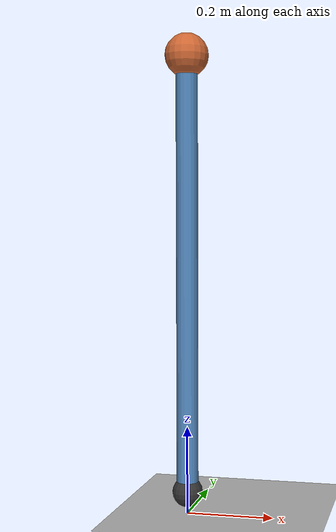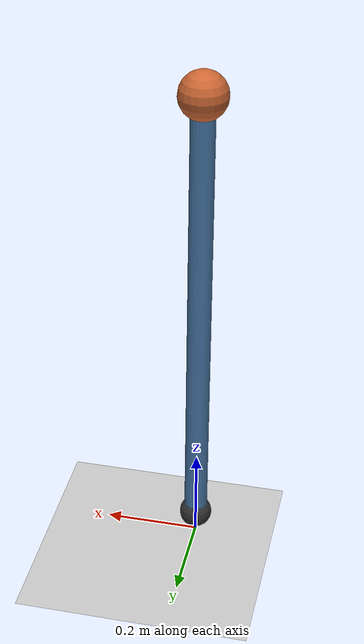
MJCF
<mujoco model="straight_leg_biped">

  <compiler angle="radian" coordinate="local"/>

  <option timestep="0.002" gravity="0 0 -9.81" integrator="RK4"/>

  <default>
    <joint damping="0.01" armature="0.01"/>
    <geom contype="1" conaffinity="1" condim="3" friction="0.8 0.1 0.1"/>
  </default>

  <asset>
    <texture type="skybox" builtin="gradient" rgb1="0.8 0.9 1.0" rgb2="0.4 0.6 0.8" width="512" height="512"/>
    <texture name="floor_tex" type="2d" builtin="checker" rgb1="0.85 0.85 0.85" rgb2="0.7 0.7 0.7" width="512" height="512"/>
    <material name="floor_mat" texture="floor_tex" texrepeat="4 4" reflectance="0.1"/>
    <material name="leg_mat" rgba="0.3 0.5 0.7 1"/>
    <material name="hip_mat" rgba="0.8 0.4 0.2 1"/>
    <material name="foot_mat" rgba="0.2 0.2 0.2 1"/>
  </asset>

  <worldbody>

    <!-- floor, slight slope for passive walking tests -->
    <geom name="floor" type="plane" size="10 5 0.1" pos="0 0 0"
          material="floor_mat" zaxis="0.04 0 1"/>

    <!-- hip: all mass concentrated here -->
    <body name="hip" pos="0 0 1.05">

      <!-- visualise hip as a small sphere -->
      <geom name="hip_geom" type="sphere" size="0.05"
            material="hip_mat" mass="10"/>
      <freejoint name="hip_free"/>

      <!-- right stance leg: inverted pendulum in frontal plane -->
      <body name="right_leg" pos="0 0 0">
        <joint name="right_frontal" type="hinge" axis="0 1 0"
               range="-0.5 0.5" damping="0.05"/>
        <joint name="right_sagittal" type="hinge" axis="1 0 0"
               range="-0.6 0.6" damping="0.05"/>
        <geom name="right_leg_geom" type="capsule"
              fromto="0 0 0 0 0 -1.0"
              size="0.025" material="leg_mat" mass="0.01"/>
        <body name="right_foot" pos="0 0 -1.0">
          <geom name="right_foot_geom" type="sphere" size="0.035"
                material="foot_mat" mass="0.05"
                contype="1" conaffinity="1"/>
        </body>
      </body>

      <!-- left swing leg: regular pendulum in sagittal plane -->
      <body name="left_leg" pos="0 0 0">
        <joint name="left_frontal" type="hinge" axis="0 1 0"
               range="-0.5 0.5" damping="0.05"/>
        <joint name="left_sagittal" type="hinge" axis="1 0 0"
               range="-0.6 0.6" damping="0.05"/>
        <geom name="left_leg_geom" type="capsule"
              fromto="0 0 0 0 0 -1.0"
              size="0.025" material="leg_mat" mass="0.01"/>
        <body name="left_foot" pos="0 0 -1.0">
          <geom name="left_foot_geom" type="sphere" size="0.035"
                material="foot_mat" mass="0.05"
                contype="1" conaffinity="1"/>
        </body>
      </body>

    </body>
  </worldbody>

  <actuator>
    <!-- minimal hip actuators — used only to inject energy on flat ground -->
    <!-- set to zero for passive slope tests -->
    <motor name="right_frontal_act" joint="right_frontal" gear="5" ctrllimited="true" ctrlrange="-2 2"/>
    <motor name="right_sagittal_act" joint="right_sagittal" gear="5" ctrllimited="true" ctrlrange="-2 2"/>
    <motor name="left_frontal_act" joint="left_frontal" gear="5" ctrllimited="true" ctrlrange="-2 2"/>
    <motor name="left_sagittal_act" joint="left_sagittal" gear="5" ctrllimited="true" ctrlrange="-2 2"/>
  </actuator>

  <sensor>
    <framepos name="hip_pos" objtype="body" objname="hip"/>
    <framevelp name="hip_vel" objtype="body" objname="hip"/>
    <framepos name="right_foot_pos" objtype="body" objname="right_foot"/>
    <framepos name="left_foot_pos" objtype="body" objname="left_foot"/>
  </sensor>

</mujoco>
